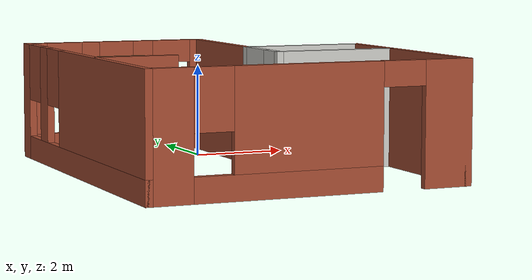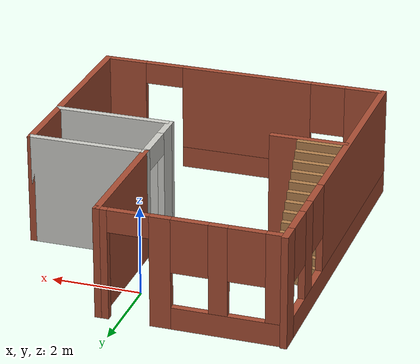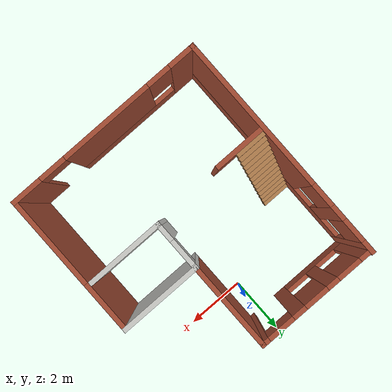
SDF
<?xml version='1.0'?>
<sdf version='1.6'>
  <model name='building'>
    <pose frame=''>-0.22021 -2.5475 0 0 -0 0</pose>
    <link name='Stairs_1'>
      <visual name='Stairs_1_Visual_0'>
        <pose frame=''>-2.71671 1.09233 0.089286 0 -0 0</pose>
        <geometry>
          <box>
            <size>1 0.135786 0.178571</size>
          </box>
        </geometry>
        <material>
          <script>
            <uri>file://media/materials/scripts/gazebo.material</uri>
            <name>Gazebo/Wood</name>
          </script>
          <ambient>1 1 1 1</ambient>
        </material>
        <meta>
          <layer>0</layer>
        </meta>
      </visual>
      <collision name='Stairs_1_Collision_0'>
        <geometry>
          <box>
            <size>1 0.135786 0.178571</size>
          </box>
        </geometry>
        <pose frame=''>-2.71671 1.09233 0.089286 0 -0 0</pose>
      </collision>
      <visual name='Stairs_1_Visual_1'>
        <pose frame=''>-2.71671 0.956549 0.267857 0 -0 0</pose>
        <geometry>
          <box>
            <size>1 0.135786 0.178571</size>
          </box>
        </geometry>
        <material>
          <script>
            <uri>file://media/materials/scripts/gazebo.material</uri>
            <name>Gazebo/Wood</name>
          </script>
          <ambient>1 1 1 1</ambient>
        </material>
        <meta>
          <layer>0</layer>
        </meta>
      </visual>
      <collision name='Stairs_1_Collision_1'>
        <geometry>
          <box>
            <size>1 0.135786 0.178571</size>
          </box>
        </geometry>
        <pose frame=''>-2.71671 0.956549 0.267857 0 -0 0</pose>
      </collision>
      <visual name='Stairs_1_Visual_2'>
        <pose frame=''>-2.71671 0.820763 0.446429 0 -0 0</pose>
        <geometry>
          <box>
            <size>1 0.135786 0.178571</size>
          </box>
        </geometry>
        <material>
          <script>
            <uri>file://media/materials/scripts/gazebo.material</uri>
            <name>Gazebo/Wood</name>
          </script>
          <ambient>1 1 1 1</ambient>
        </material>
        <meta>
          <layer>0</layer>
        </meta>
      </visual>
      <collision name='Stairs_1_Collision_2'>
        <geometry>
          <box>
            <size>1 0.135786 0.178571</size>
          </box>
        </geometry>
        <pose frame=''>-2.71671 0.820763 0.446429 0 -0 0</pose>
      </collision>
      <visual name='Stairs_1_Visual_3'>
        <pose frame=''>-2.71671 0.684977 0.625 0 -0 0</pose>
        <geometry>
          <box>
            <size>1 0.135786 0.178571</size>
          </box>
        </geometry>
        <material>
          <script>
            <uri>file://media/materials/scripts/gazebo.material</uri>
            <name>Gazebo/Wood</name>
          </script>
          <ambient>1 1 1 1</ambient>
        </material>
        <meta>
          <layer>0</layer>
        </meta>
      </visual>
      <collision name='Stairs_1_Collision_3'>
        <geometry>
          <box>
            <size>1 0.135786 0.178571</size>
          </box>
        </geometry>
        <pose frame=''>-2.71671 0.684977 0.625 0 -0 0</pose>
      </collision>
      <visual name='Stairs_1_Visual_4'>
        <pose frame=''>-2.71671 0.549191 0.803571 0 -0 0</pose>
        <geometry>
          <box>
            <size>1 0.135786 0.178571</size>
          </box>
        </geometry>
        <material>
          <script>
            <uri>file://media/materials/scripts/gazebo.material</uri>
            <name>Gazebo/Wood</name>
          </script>
          <ambient>1 1 1 1</ambient>
        </material>
        <meta>
          <layer>0</layer>
        </meta>
      </visual>
      <collision name='Stairs_1_Collision_4'>
        <geometry>
          <box>
            <size>1 0.135786 0.178571</size>
          </box>
        </geometry>
        <pose frame=''>-2.71671 0.549191 0.803571 0 -0 0</pose>
      </collision>
      <visual name='Stairs_1_Visual_5'>
        <pose frame=''>-2.71671 0.413406 0.982143 0 -0 0</pose>
        <geometry>
          <box>
            <size>1 0.135786 0.178571</size>
          </box>
        </geometry>
        <material>
          <script>
            <uri>file://media/materials/scripts/gazebo.material</uri>
            <name>Gazebo/Wood</name>
          </script>
          <ambient>1 1 1 1</ambient>
        </material>
        <meta>
          <layer>0</layer>
        </meta>
      </visual>
      <collision name='Stairs_1_Collision_5'>
        <geometry>
          <box>
            <size>1 0.135786 0.178571</size>
          </box>
        </geometry>
        <pose frame=''>-2.71671 0.413406 0.982143 0 -0 0</pose>
      </collision>
      <visual name='Stairs_1_Visual_6'>
        <pose frame=''>-2.71671 0.27762 1.16071 0 -0 0</pose>
        <geometry>
          <box>
            <size>1 0.135786 0.178571</size>
          </box>
        </geometry>
        <material>
          <script>
            <uri>file://media/materials/scripts/gazebo.material</uri>
            <name>Gazebo/Wood</name>
          </script>
          <ambient>1 1 1 1</ambient>
        </material>
        <meta>
          <layer>0</layer>
        </meta>
      </visual>
      <collision name='Stairs_1_Collision_6'>
        <geometry>
          <box>
            <size>1 0.135786 0.178571</size>
          </box>
        </geometry>
        <pose frame=''>-2.71671 0.27762 1.16071 0 -0 0</pose>
      </collision>
      <visual name='Stairs_1_Visual_7'>
        <pose frame=''>-2.71671 0.141834 1.33929 0 -0 0</pose>
        <geometry>
          <box>
            <size>1 0.135786 0.178571</size>
          </box>
        </geometry>
        <material>
          <script>
            <uri>file://media/materials/scripts/gazebo.material</uri>
            <name>Gazebo/Wood</name>
          </script>
          <ambient>1 1 1 1</ambient>
        </material>
        <meta>
          <layer>0</layer>
        </meta>
      </visual>
      <collision name='Stairs_1_Collision_7'>
        <geometry>
          <box>
            <size>1 0.135786 0.178571</size>
          </box>
        </geometry>
        <pose frame=''>-2.71671 0.141834 1.33929 0 -0 0</pose>
      </collision>
      <visual name='Stairs_1_Visual_8'>
        <pose frame=''>-2.71671 0.006049 1.51786 0 -0 0</pose>
        <geometry>
          <box>
            <size>1 0.135786 0.178571</size>
          </box>
        </geometry>
        <material>
          <script>
            <uri>file://media/materials/scripts/gazebo.material</uri>
            <name>Gazebo/Wood</name>
          </script>
          <ambient>1 1 1 1</ambient>
        </material>
        <meta>
          <layer>0</layer>
        </meta>
      </visual>
      <collision name='Stairs_1_Collision_8'>
        <geometry>
          <box>
            <size>1 0.135786 0.178571</size>
          </box>
        </geometry>
        <pose frame=''>-2.71671 0.006049 1.51786 0 -0 0</pose>
      </collision>
      <visual name='Stairs_1_Visual_9'>
        <pose frame=''>-2.71671 -0.129737 1.69643 0 -0 0</pose>
        <geometry>
          <box>
            <size>1 0.135786 0.178571</size>
          </box>
        </geometry>
        <material>
          <script>
            <uri>file://media/materials/scripts/gazebo.material</uri>
            <name>Gazebo/Wood</name>
          </script>
          <ambient>1 1 1 1</ambient>
        </material>
        <meta>
          <layer>0</layer>
        </meta>
      </visual>
      <collision name='Stairs_1_Collision_9'>
        <geometry>
          <box>
            <size>1 0.135786 0.178571</size>
          </box>
        </geometry>
        <pose frame=''>-2.71671 -0.129737 1.69643 0 -0 0</pose>
      </collision>
      <visual name='Stairs_1_Visual_10'>
        <pose frame=''>-2.71671 -0.265523 1.875 0 -0 0</pose>
        <geometry>
          <box>
            <size>1 0.135786 0.178571</size>
          </box>
        </geometry>
        <material>
          <script>
            <uri>file://media/materials/scripts/gazebo.material</uri>
            <name>Gazebo/Wood</name>
          </script>
          <ambient>1 1 1 1</ambient>
        </material>
        <meta>
          <layer>0</layer>
        </meta>
      </visual>
      <collision name='Stairs_1_Collision_10'>
        <geometry>
          <box>
            <size>1 0.135786 0.178571</size>
          </box>
        </geometry>
        <pose frame=''>-2.71671 -0.265523 1.875 0 -0 0</pose>
      </collision>
      <visual name='Stairs_1_Visual_11'>
        <pose frame=''>-2.71671 -0.401308 2.05357 0 -0 0</pose>
        <geometry>
          <box>
            <size>1 0.135786 0.178571</size>
          </box>
        </geometry>
        <material>
          <script>
            <uri>file://media/materials/scripts/gazebo.material</uri>
            <name>Gazebo/Wood</name>
          </script>
          <ambient>1 1 1 1</ambient>
        </material>
        <meta>
          <layer>0</layer>
        </meta>
      </visual>
      <collision name='Stairs_1_Collision_11'>
        <geometry>
          <box>
            <size>1 0.135786 0.178571</size>
          </box>
        </geometry>
        <pose frame=''>-2.71671 -0.401308 2.05357 0 -0 0</pose>
      </collision>
      <visual name='Stairs_1_Visual_12'>
        <pose frame=''>-2.71671 -0.537094 2.23214 0 -0 0</pose>
        <geometry>
          <box>
            <size>1 0.135786 0.178571</size>
          </box>
        </geometry>
        <material>
          <script>
            <uri>file://media/materials/scripts/gazebo.material</uri>
            <name>Gazebo/Wood</name>
          </script>
          <ambient>1 1 1 1</ambient>
        </material>
        <meta>
          <layer>0</layer>
        </meta>
      </visual>
      <collision name='Stairs_1_Collision_12'>
        <geometry>
          <box>
            <size>1 0.135786 0.178571</size>
          </box>
        </geometry>
        <pose frame=''>-2.71671 -0.537094 2.23214 0 -0 0</pose>
      </collision>
      <visual name='Stairs_1_Visual_13'>
        <pose frame=''>-2.71671 -0.67288 2.41071 0 -0 0</pose>
        <geometry>
          <box>
            <size>1 0.135786 0.178571</size>
          </box>
        </geometry>
        <material>
          <script>
            <uri>file://media/materials/scripts/gazebo.material</uri>
            <name>Gazebo/Wood</name>
          </script>
          <ambient>1 1 1 1</ambient>
        </material>
        <meta>
          <layer>0</layer>
        </meta>
      </visual>
      <collision name='Stairs_1_Collision_13'>
        <geometry>
          <box>
            <size>1 0.135786 0.178571</size>
          </box>
        </geometry>
        <pose frame=''>-2.71671 -0.67288 2.41071 0 -0 0</pose>
      </collision>
    </link>
    <link name='Wall_0'>
      <pose frame=''>-3.3 0 0 0 0 -1.5708</pose>
      <visual name='Wall_0_Visual_0'>
        <pose frame=''>-3.64528 0 1.25 0 -0 0</pose>
        <geometry>
          <box>
            <size>0.459429 0.15 2.5</size>
          </box>
        </geometry>
        <material>
          <script>
            <uri>file://media/materials/scripts/gazebo.material</uri>
            <name>Gazebo/Bricks</name>
          </script>
          <ambient>1 1 1 1</ambient>
        </material>
        <meta>
          <layer>0</layer>
        </meta>
      </visual>
      <collision name='Wall_0_Collision_0'>
        <geometry>
          <box>
            <size>0.459429 0.15 2.5</size>
          </box>
        </geometry>
        <pose frame=''>-3.64528 0 1.25 0 -0 0</pose>
      </collision>
      <visual name='Wall_0_Visual_1'>
        <pose frame=''>0.229715 0 0.25 0 -0 0</pose>
        <geometry>
          <box>
            <size>7.29057 0.15 0.5</size>
          </box>
        </geometry>
        <material>
          <script>
            <uri>file://media/materials/scripts/gazebo.material</uri>
            <name>Gazebo/Bricks</name>
          </script>
          <ambient>1 1 1 1</ambient>
        </material>
        <meta>
          <layer>0</layer>
        </meta>
      </visual>
      <collision name='Wall_0_Collision_1'>
        <geometry>
          <box>
            <size>7.29057 0.15 0.5</size>
          </box>
        </geometry>
        <pose frame=''>0.229715 0 0.25 0 -0 0</pose>
      </collision>
      <visual name='Wall_0_Visual_2'>
        <pose frame=''>-2.36188 0 1.5 0 -0 0</pose>
        <geometry>
          <box>
            <size>0.507382 0.15 2</size>
          </box>
        </geometry>
        <material>
          <script>
            <uri>file://media/materials/scripts/gazebo.material</uri>
            <name>Gazebo/Bricks</name>
          </script>
          <ambient>1 1 1 1</ambient>
        </material>
        <meta>
          <layer>0</layer>
        </meta>
      </visual>
      <collision name='Wall_0_Collision_2'>
        <geometry>
          <box>
            <size>0.507382 0.15 2</size>
          </box>
        </geometry>
        <pose frame=''>-2.36188 0 1.5 0 -0 0</pose>
      </collision>
      <visual name='Wall_0_Visual_3'>
        <pose frame=''>1.28341 0 1.5 0 -0 0</pose>
        <geometry>
          <box>
            <size>5.18319 0.15 2</size>
          </box>
        </geometry>
        <material>
          <script>
            <uri>file://media/materials/scripts/gazebo.material</uri>
            <name>Gazebo/Bricks</name>
          </script>
          <ambient>1 1 1 1</ambient>
        </material>
        <meta>
          <layer>0</layer>
        </meta>
      </visual>
      <collision name='Wall_0_Collision_3'>
        <geometry>
          <box>
            <size>5.18319 0.15 2</size>
          </box>
        </geometry>
        <pose frame=''>1.28341 0 1.5 0 -0 0</pose>
      </collision>
      <visual name='Wall_0_Visual_4'>
        <pose frame=''>-3.01557 0 1.9 0 -0 0</pose>
        <geometry>
          <box>
            <size>0.8 0.15 1.2</size>
          </box>
        </geometry>
        <material>
          <script>
            <uri>file://media/materials/scripts/gazebo.material</uri>
            <name>Gazebo/Bricks</name>
          </script>
          <ambient>1 1 1 1</ambient>
        </material>
        <meta>
          <layer>0</layer>
        </meta>
      </visual>
      <collision name='Wall_0_Collision_4'>
        <geometry>
          <box>
            <size>0.8 0.15 1.2</size>
          </box>
        </geometry>
        <pose frame=''>-3.01557 0 1.9 0 -0 0</pose>
      </collision>
      <visual name='Wall_0_Visual_5'>
        <pose frame=''>-1.70819 0 1.9 0 -0 0</pose>
        <geometry>
          <box>
            <size>0.8 0.15 1.2</size>
          </box>
        </geometry>
        <material>
          <script>
            <uri>file://media/materials/scripts/gazebo.material</uri>
            <name>Gazebo/Bricks</name>
          </script>
          <ambient>1 1 1 1</ambient>
        </material>
        <meta>
          <layer>0</layer>
        </meta>
      </visual>
      <collision name='Wall_0_Collision_5'>
        <geometry>
          <box>
            <size>0.8 0.15 1.2</size>
          </box>
        </geometry>
        <pose frame=''>-1.70819 0 1.9 0 -0 0</pose>
      </collision>
    </link>
    <link name='Wall_1'>
      <pose frame=''>0 -3.8 0 0 -0 0</pose>
      <visual name='Wall_1_Visual_0'>
        <pose frame=''>-2.90392 0 1.25 0 -0 0</pose>
        <geometry>
          <box>
            <size>0.942155 0.15 2.5</size>
          </box>
        </geometry>
        <material>
          <script>
            <uri>file://media/materials/scripts/gazebo.material</uri>
            <name>Gazebo/Bricks</name>
          </script>
          <ambient>1 1 1 1</ambient>
        </material>
        <meta>
          <layer>0</layer>
        </meta>
      </visual>
      <collision name='Wall_1_Collision_0'>
        <geometry>
          <box>
            <size>0.942155 0.15 2.5</size>
          </box>
        </geometry>
        <pose frame=''>-2.90392 0 1.25 0 -0 0</pose>
      </collision>
      <visual name='Wall_1_Visual_1'>
        <pose frame=''>2.85715 0 1.25 0 -0 0</pose>
        <geometry>
          <box>
            <size>1.0357 0.15 2.5</size>
          </box>
        </geometry>
        <material>
          <script>
            <uri>file://media/materials/scripts/gazebo.material</uri>
            <name>Gazebo/Bricks</name>
          </script>
          <ambient>1 1 1 1</ambient>
        </material>
        <meta>
          <layer>0</layer>
        </meta>
      </visual>
      <collision name='Wall_1_Collision_1'>
        <geometry>
          <box>
            <size>1.0357 0.15 2.5</size>
          </box>
        </geometry>
        <pose frame=''>2.85715 0 1.25 0 -0 0</pose>
      </collision>
      <visual name='Wall_1_Visual_2'>
        <pose frame=''>-0.496772 0 0.25 0 -0 0</pose>
        <geometry>
          <box>
            <size>3.87215 0.15 0.5</size>
          </box>
        </geometry>
        <material>
          <script>
            <uri>file://media/materials/scripts/gazebo.material</uri>
            <name>Gazebo/Bricks</name>
          </script>
          <ambient>1 1 1 1</ambient>
        </material>
        <meta>
          <layer>0</layer>
        </meta>
      </visual>
      <collision name='Wall_1_Collision_2'>
        <geometry>
          <box>
            <size>3.87215 0.15 0.5</size>
          </box>
        </geometry>
        <pose frame=''>-0.496772 0 0.25 0 -0 0</pose>
      </collision>
      <visual name='Wall_1_Visual_3'>
        <pose frame=''>-0.096772 0 1.5 0 -0 0</pose>
        <geometry>
          <box>
            <size>3.07215 0.15 2</size>
          </box>
        </geometry>
        <material>
          <script>
            <uri>file://media/materials/scripts/gazebo.material</uri>
            <name>Gazebo/Bricks</name>
          </script>
          <ambient>1 1 1 1</ambient>
        </material>
        <meta>
          <layer>0</layer>
        </meta>
      </visual>
      <collision name='Wall_1_Collision_3'>
        <geometry>
          <box>
            <size>3.07215 0.15 2</size>
          </box>
        </geometry>
        <pose frame=''>-0.096772 0 1.5 0 -0 0</pose>
      </collision>
      <visual name='Wall_1_Visual_4'>
        <pose frame=''>-2.03285 0 1.9 0 -0 0</pose>
        <geometry>
          <box>
            <size>0.8 0.15 1.2</size>
          </box>
        </geometry>
        <material>
          <script>
            <uri>file://media/materials/scripts/gazebo.material</uri>
            <name>Gazebo/Bricks</name>
          </script>
          <ambient>1 1 1 1</ambient>
        </material>
        <meta>
          <layer>0</layer>
        </meta>
      </visual>
      <collision name='Wall_1_Collision_4'>
        <geometry>
          <box>
            <size>0.8 0.15 1.2</size>
          </box>
        </geometry>
        <pose frame=''>-2.03285 0 1.9 0 -0 0</pose>
      </collision>
      <visual name='Wall_1_Visual_5'>
        <pose frame=''>1.8893 0 2.25 0 -0 0</pose>
        <geometry>
          <box>
            <size>0.9 0.15 0.5</size>
          </box>
        </geometry>
        <material>
          <script>
            <uri>file://media/materials/scripts/gazebo.material</uri>
            <name>Gazebo/Bricks</name>
          </script>
          <ambient>1 1 1 1</ambient>
        </material>
        <meta>
          <layer>0</layer>
        </meta>
      </visual>
      <collision name='Wall_1_Collision_5'>
        <geometry>
          <box>
            <size>0.9 0.15 0.5</size>
          </box>
        </geometry>
        <pose frame=''>1.8893 0 2.25 0 -0 0</pose>
      </collision>
    </link>
    <link name='Wall_10'>
      <collision name='Wall_10_Collision'>
        <geometry>
          <box>
            <size>2.75 0.15 2.5</size>
          </box>
        </geometry>
        <pose frame=''>0 0 1.25 0 -0 0</pose>
      </collision>
      <visual name='Wall_10_Visual'>
        <pose frame=''>0 0 1.25 0 -0 0</pose>
        <geometry>
          <box>
            <size>2.75 0.15 2.5</size>
          </box>
        </geometry>
        <material>
          <script>
            <uri>file://media/materials/scripts/gazebo.material</uri>
            <name>Gazebo/CeilingTiled</name>
          </script>
          <ambient>1 1 1 1</ambient>
        </material>
        <meta>
          <layer>0</layer>
        </meta>
      </visual>
      <pose frame=''>2 0.9 0 0 -0 0</pose>
    </link>
    <link name='Wall_11'>
      <collision name='Wall_11_Collision'>
        <geometry>
          <box>
            <size>1.75 0.15 2.5</size>
          </box>
        </geometry>
        <pose frame=''>0 0 1.25 0 -0 0</pose>
      </collision>
      <visual name='Wall_11_Visual'>
        <pose frame=''>0 0 1.25 0 -0 0</pose>
        <geometry>
          <box>
            <size>1.75 0.15 2.5</size>
          </box>
        </geometry>
        <material>
          <script>
            <uri>file://media/materials/scripts/gazebo.material</uri>
            <name>Gazebo/Bricks</name>
          </script>
          <ambient>1 1 1 1</ambient>
        </material>
        <meta>
          <layer>0</layer>
        </meta>
      </visual>
      <pose frame=''>3.3 0.1 0 0 0 -1.5708</pose>
    </link>
    <link name='Wall_2'>
      <collision name='Wall_2_Collision'>
        <geometry>
          <box>
            <size>3.25 0.15 2.5</size>
          </box>
        </geometry>
        <pose frame=''>0 0 1.25 0 -0 0</pose>
      </collision>
      <visual name='Wall_2_Visual'>
        <pose frame=''>0 0 1.25 0 -0 0</pose>
        <geometry>
          <box>
            <size>3.25 0.15 2.5</size>
          </box>
        </geometry>
        <material>
          <script>
            <uri>file://media/materials/scripts/gazebo.material</uri>
            <name>Gazebo/Bricks</name>
          </script>
          <ambient>1 1 1 1</ambient>
        </material>
        <meta>
          <layer>0</layer>
        </meta>
      </visual>
      <pose frame=''>3.3 -2.25 0 0 -0 1.5708</pose>
    </link>
    <link name='Wall_3'>
      <collision name='Wall_3_Collision'>
        <geometry>
          <box>
            <size>2.75 0.15 2.5</size>
          </box>
        </geometry>
        <pose frame=''>0 0 1.25 0 -0 0</pose>
      </collision>
      <visual name='Wall_3_Visual'>
        <pose frame=''>0 0 1.25 0 -0 0</pose>
        <geometry>
          <box>
            <size>2.75 0.15 2.5</size>
          </box>
        </geometry>
        <material>
          <script>
            <uri>file://media/materials/scripts/gazebo.material</uri>
            <name>Gazebo/CeilingTiled</name>
          </script>
          <ambient>1 1 1 1</ambient>
        </material>
        <meta>
          <layer>0</layer>
        </meta>
      </visual>
      <pose frame=''>2 -0.7 0 0 -0 3.14159</pose>
    </link>
    <link name='Wall_4'>
      <pose frame=''>0.7 0.1 0 0 -0 1.5708</pose>
      <visual name='Wall_4_Visual_0'>
        <pose frame=''>-0.542267 0 1.25 0 -0 0</pose>
        <geometry>
          <box>
            <size>0.665466 0.15 2.5</size>
          </box>
        </geometry>
        <material>
          <script>
            <uri>file://media/materials/scripts/gazebo.material</uri>
            <name>Gazebo/CeilingTiled</name>
          </script>
          <ambient>1 1 1 1</ambient>
        </material>
        <meta>
          <layer>0</layer>
        </meta>
      </visual>
      <collision name='Wall_4_Collision_0'>
        <geometry>
          <box>
            <size>0.665466 0.15 2.5</size>
          </box>
        </geometry>
        <pose frame=''>-0.542267 0 1.25 0 -0 0</pose>
      </collision>
      <visual name='Wall_4_Visual_1'>
        <pose frame=''>0.782733 0 1.25 0 -0 0</pose>
        <geometry>
          <box>
            <size>0.184534 0.15 2.5</size>
          </box>
        </geometry>
        <material>
          <script>
            <uri>file://media/materials/scripts/gazebo.material</uri>
            <name>Gazebo/CeilingTiled</name>
          </script>
          <ambient>1 1 1 1</ambient>
        </material>
        <meta>
          <layer>0</layer>
        </meta>
      </visual>
      <collision name='Wall_4_Collision_1'>
        <geometry>
          <box>
            <size>0.184534 0.15 2.5</size>
          </box>
        </geometry>
        <pose frame=''>0.782733 0 1.25 0 -0 0</pose>
      </collision>
      <visual name='Wall_4_Visual_2'>
        <pose frame=''>0.240466 0 2.25 0 -0 0</pose>
        <geometry>
          <box>
            <size>0.9 0.15 0.5</size>
          </box>
        </geometry>
        <material>
          <script>
            <uri>file://media/materials/scripts/gazebo.material</uri>
            <name>Gazebo/CeilingTiled</name>
          </script>
          <ambient>1 1 1 1</ambient>
        </material>
        <meta>
          <layer>0</layer>
        </meta>
      </visual>
      <collision name='Wall_4_Collision_2'>
        <geometry>
          <box>
            <size>0.9 0.15 0.5</size>
          </box>
        </geometry>
        <pose frame=''>0.240466 0 2.25 0 -0 0</pose>
      </collision>
    </link>
    <link name='Wall_5'>
      <collision name='Wall_5_Collision'>
        <geometry>
          <box>
            <size>3 0.15 2.5</size>
          </box>
        </geometry>
        <pose frame=''>0 0 1.25 0 -0 0</pose>
      </collision>
      <visual name='Wall_5_Visual'>
        <pose frame=''>0 0 1.25 0 -0 0</pose>
        <geometry>
          <box>
            <size>3 0.15 2.5</size>
          </box>
        </geometry>
        <material>
          <script>
            <uri>file://media/materials/scripts/gazebo.material</uri>
            <name>Gazebo/Bricks</name>
          </script>
          <ambient>1 1 1 1</ambient>
        </material>
        <meta>
          <layer>0</layer>
        </meta>
      </visual>
      <pose frame=''>0.7 2.325 0 0 -0 1.5708</pose>
    </link>
    <link name='Wall_6'>
      <pose frame=''>-1.225 3.75 0 0 -0 3.14159</pose>
      <visual name='Wall_6_Visual_0'>
        <pose frame=''>-1.84687 0 1.25 0 -0 0</pose>
        <geometry>
          <box>
            <size>0.306261 0.15 2.5</size>
          </box>
        </geometry>
        <material>
          <script>
            <uri>file://media/materials/scripts/gazebo.material</uri>
            <name>Gazebo/Bricks</name>
          </script>
          <ambient>1 1 1 1</ambient>
        </material>
        <meta>
          <layer>0</layer>
        </meta>
      </visual>
      <collision name='Wall_6_Collision_0'>
        <geometry>
          <box>
            <size>0.306261 0.15 2.5</size>
          </box>
        </geometry>
        <pose frame=''>-1.84687 0 1.25 0 -0 0</pose>
      </collision>
      <visual name='Wall_6_Visual_1'>
        <pose frame=''>-0.565048 0 1.25 0 -0 0</pose>
        <geometry>
          <box>
            <size>0.457382 0.15 2.5</size>
          </box>
        </geometry>
        <material>
          <script>
            <uri>file://media/materials/scripts/gazebo.material</uri>
            <name>Gazebo/Bricks</name>
          </script>
          <ambient>1 1 1 1</ambient>
        </material>
        <meta>
          <layer>0</layer>
        </meta>
      </visual>
      <collision name='Wall_6_Collision_1'>
        <geometry>
          <box>
            <size>0.457382 0.15 2.5</size>
          </box>
        </geometry>
        <pose frame=''>-0.565048 0 1.25 0 -0 0</pose>
      </collision>
      <visual name='Wall_6_Visual_2'>
        <pose frame=''>0.831821 0 0.25 0 -0 0</pose>
        <geometry>
          <box>
            <size>2.33636 0.15 0.5</size>
          </box>
        </geometry>
        <material>
          <script>
            <uri>file://media/materials/scripts/gazebo.material</uri>
            <name>Gazebo/Bricks</name>
          </script>
          <ambient>1 1 1 1</ambient>
        </material>
        <meta>
          <layer>0</layer>
        </meta>
      </visual>
      <collision name='Wall_6_Collision_2'>
        <geometry>
          <box>
            <size>2.33636 0.15 0.5</size>
          </box>
        </geometry>
        <pose frame=''>0.831821 0 0.25 0 -0 0</pose>
      </collision>
      <visual name='Wall_6_Visual_3'>
        <pose frame=''>0.66705 0 1.5 0 -0 0</pose>
        <geometry>
          <box>
            <size>0.406814 0.15 2</size>
          </box>
        </geometry>
        <material>
          <script>
            <uri>file://media/materials/scripts/gazebo.material</uri>
            <name>Gazebo/Bricks</name>
          </script>
          <ambient>1 1 1 1</ambient>
        </material>
        <meta>
          <layer>0</layer>
        </meta>
      </visual>
      <collision name='Wall_6_Collision_3'>
        <geometry>
          <box>
            <size>0.406814 0.15 2</size>
          </box>
        </geometry>
        <pose frame=''>0.66705 0 1.5 0 -0 0</pose>
      </collision>
      <visual name='Wall_6_Visual_4'>
        <pose frame=''>1.83523 0 1.5 0 -0 0</pose>
        <geometry>
          <box>
            <size>0.329543 0.15 2</size>
          </box>
        </geometry>
        <material>
          <script>
            <uri>file://media/materials/scripts/gazebo.material</uri>
            <name>Gazebo/Bricks</name>
          </script>
          <ambient>1 1 1 1</ambient>
        </material>
        <meta>
          <layer>0</layer>
        </meta>
      </visual>
      <collision name='Wall_6_Collision_4'>
        <geometry>
          <box>
            <size>0.329543 0.15 2</size>
          </box>
        </geometry>
        <pose frame=''>1.83523 0 1.5 0 -0 0</pose>
      </collision>
      <visual name='Wall_6_Visual_5'>
        <pose frame=''>0.063643 0 1.9 0 -0 0</pose>
        <geometry>
          <box>
            <size>0.8 0.15 1.2</size>
          </box>
        </geometry>
        <material>
          <script>
            <uri>file://media/materials/scripts/gazebo.material</uri>
            <name>Gazebo/Bricks</name>
          </script>
          <ambient>1 1 1 1</ambient>
        </material>
        <meta>
          <layer>0</layer>
        </meta>
      </visual>
      <collision name='Wall_6_Collision_5'>
        <geometry>
          <box>
            <size>0.8 0.15 1.2</size>
          </box>
        </geometry>
        <pose frame=''>0.063643 0 1.9 0 -0 0</pose>
      </collision>
      <visual name='Wall_6_Visual_6'>
        <pose frame=''>1.27046 0 1.9 0 -0 0</pose>
        <geometry>
          <box>
            <size>0.8 0.15 1.2</size>
          </box>
        </geometry>
        <material>
          <script>
            <uri>file://media/materials/scripts/gazebo.material</uri>
            <name>Gazebo/Bricks</name>
          </script>
          <ambient>1 1 1 1</ambient>
        </material>
        <meta>
          <layer>0</layer>
        </meta>
      </visual>
      <collision name='Wall_6_Collision_6'>
        <geometry>
          <box>
            <size>0.8 0.15 1.2</size>
          </box>
        </geometry>
        <pose frame=''>1.27046 0 1.9 0 -0 0</pose>
      </collision>
      <visual name='Wall_6_Visual_7'>
        <pose frame=''>-1.24374 0 2.25 0 -0 0</pose>
        <geometry>
          <box>
            <size>0.9 0.15 0.5</size>
          </box>
        </geometry>
        <material>
          <script>
            <uri>file://media/materials/scripts/gazebo.material</uri>
            <name>Gazebo/Bricks</name>
          </script>
          <ambient>1 1 1 1</ambient>
        </material>
        <meta>
          <layer>0</layer>
        </meta>
      </visual>
      <collision name='Wall_6_Collision_7'>
        <geometry>
          <box>
            <size>0.9 0.15 0.5</size>
          </box>
        </geometry>
        <pose frame=''>-1.24374 0 2.25 0 -0 0</pose>
      </collision>
    </link>
    <link name='Wall_8'>
      <collision name='Wall_8_Collision'>
        <geometry>
          <box>
            <size>1.75 0.15 2.5</size>
          </box>
        </geometry>
        <pose frame=''>0 0 1.25 0 -0 0</pose>
      </collision>
      <visual name='Wall_8_Visual'>
        <pose frame=''>0 0 1.25 0 -0 0</pose>
        <geometry>
          <box>
            <size>1.75 0.15 2.5</size>
          </box>
        </geometry>
        <material>
          <script>
            <uri>file://media/materials/scripts/gazebo.material</uri>
            <name>Gazebo/Bricks</name>
          </script>
          <ambient>1 1 1 1</ambient>
        </material>
        <meta>
          <layer>0</layer>
        </meta>
      </visual>
      <pose frame=''>-2.43966 -0.806008 0 0 -0 0</pose>
    </link>
    <static>1</static>
  </model>
</sdf>
